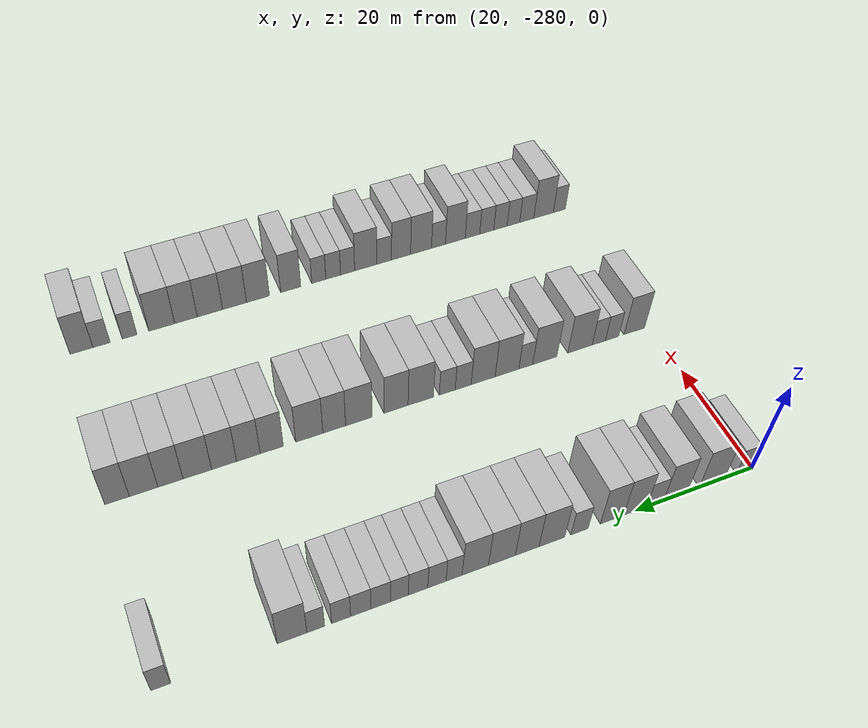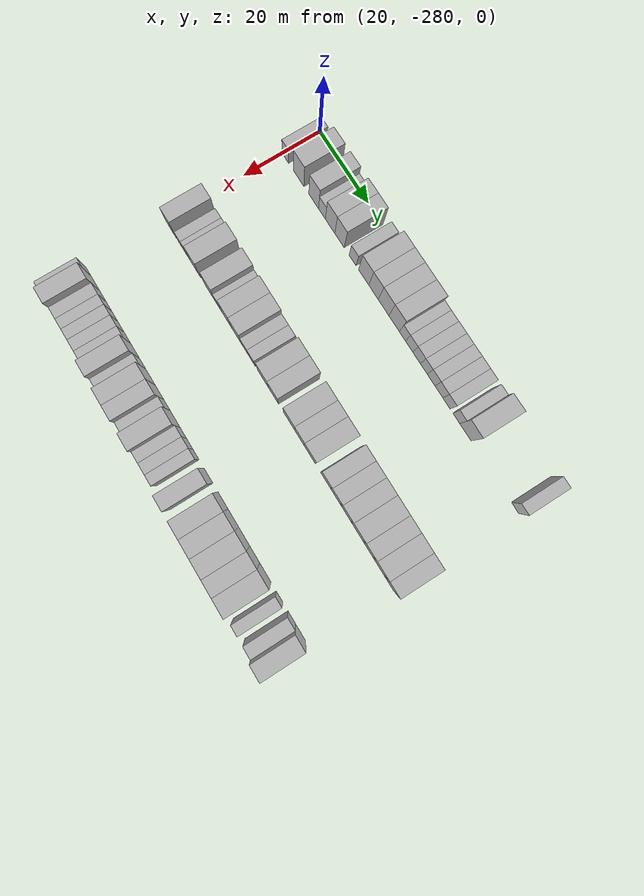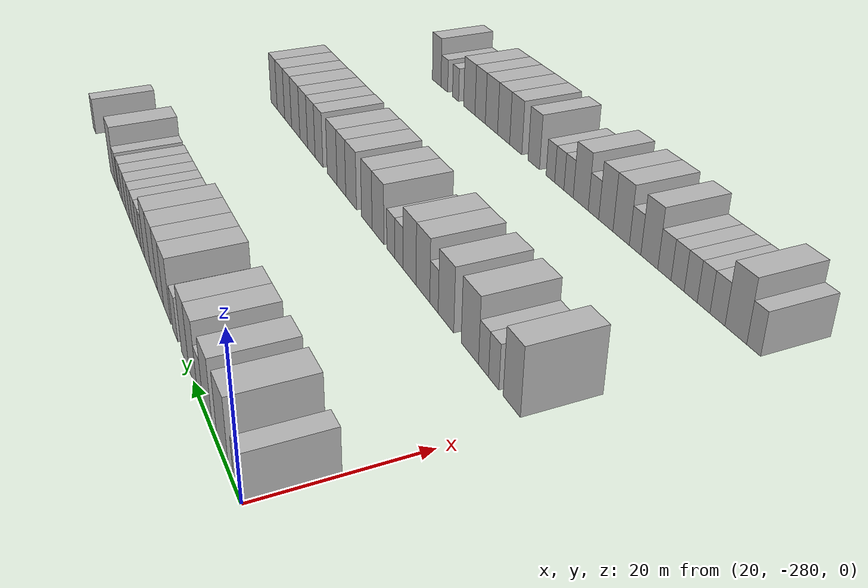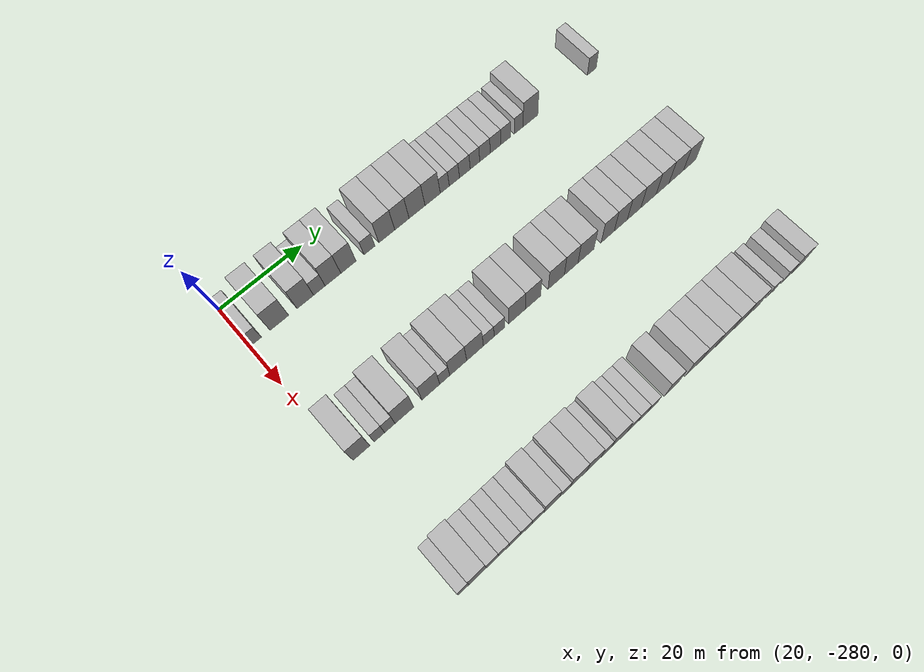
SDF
<sdf version="1.6">
 <world name="default">
  <model name="building_1">
   <static>1</static>
   <pose>25.0000 -278.6222 0 0.000000 0.000000 0.000000</pose>
   <link name="link">
    <pose>0 0 3.00 0 0 0</pose>
    <collision name="collision"><geometry><box><size>10.0000 2.7555 6.0000</size></box></geometry></collision>
    <visual name="visual">
     <cast_shadows>0</cast_shadows>
     <geometry><box><size>10.0000 2.7555 6.0000</size></box></geometry>
     <material>
      <script>
       <uri>model://HANNAS_wall/materials/scripts</uri>
       <uri>model://HANNAS_wall/materials/textures</uri>
       <name>vrc/HANNAS_wall</name>
      </script>
     </material>
    </visual>
   </link>
  </model>
  <model name="building_2">
   <static>1</static>
   <pose>25.0000 -273.0113 0 0.000000 0.000000 0.000000</pose>
   <link name="link">
    <pose>0 0 4.50 0 0 0</pose>
    <collision name="collision"><geometry><box><size>10.0000 4.4663 9.0000</size></box></geometry></collision>
    <visual name="visual">
     <cast_shadows>0</cast_shadows>
     <geometry><box><size>10.0000 4.4663 9.0000</size></box></geometry>
     <material>
      <script>
       <uri>model://HANNAS_wall/materials/scripts</uri>
       <uri>model://HANNAS_wall/materials/textures</uri>
       <name>vrc/HANNAS_wall</name>
      </script>
     </material>
    </visual>
   </link>
  </model>
  <model name="building_3">
   <static>1</static>
   <pose>25.0000 -266.7550 0 0.000000 0.000000 0.000000</pose>
   <link name="link">
    <pose>0 0 4.50 0 0 0</pose>
    <collision name="collision"><geometry><box><size>10.0000 4.0464 9.0000</size></box></geometry></collision>
    <visual name="visual">
     <cast_shadows>0</cast_shadows>
     <geometry><box><size>10.0000 4.0464 9.0000</size></box></geometry>
     <material>
      <script>
       <uri>model://HANNAS_wall/materials/scripts</uri>
       <uri>model://HANNAS_wall/materials/textures</uri>
       <name>vrc/HANNAS_wall</name>
      </script>
     </material>
    </visual>
   </link>
  </model>
  <model name="building_4">
   <static>1</static>
   <pose>25.0000 -263.3125 0 0.000000 0.000000 0.000000</pose>
   <link name="link">
    <pose>0 0 3.00 0 0 0</pose>
    <collision name="collision"><geometry><box><size>10.0000 2.8386 6.0000</size></box></geometry></collision>
    <visual name="visual">
     <cast_shadows>0</cast_shadows>
     <geometry><box><size>10.0000 2.8386 6.0000</size></box></geometry>
     <material>
      <script>
       <uri>model://HANNAS_wall/materials/scripts</uri>
       <uri>model://HANNAS_wall/materials/textures</uri>
       <name>vrc/HANNAS_wall</name>
      </script>
     </material>
    </visual>
   </link>
  </model>
  <model name="building_5">
   <static>1</static>
   <pose>25.0000 -259.9470 0 0.000000 0.000000 0.000000</pose>
   <link name="link">
    <pose>0 0 4.50 0 0 0</pose>
    <collision name="collision"><geometry><box><size>10.0000 3.8923 9.0000</size></box></geometry></collision>
    <visual name="visual">
     <cast_shadows>0</cast_shadows>
     <geometry><box><size>10.0000 3.8923 9.0000</size></box></geometry>
     <material>
      <script>
       <uri>model://HANNAS_wall/materials/scripts</uri>
       <uri>model://HANNAS_wall/materials/textures</uri>
       <name>vrc/HANNAS_wall</name>
      </script>
     </material>
    </visual>
   </link>
  </model>
  <model name="building_6">
   <static>1</static>
   <pose>25.0000 -256.0884 0 0.000000 0.000000 0.000000</pose>
   <link name="link">
    <pose>0 0 4.50 0 0 0</pose>
    <collision name="collision"><geometry><box><size>10.0000 3.8249 9.0000</size></box></geometry></collision>
    <visual name="visual">
     <cast_shadows>0</cast_shadows>
     <geometry><box><size>10.0000 3.8249 9.0000</size></box></geometry>
     <material>
      <script>
       <uri>model://HANNAS_wall/materials/scripts</uri>
       <uri>model://HANNAS_wall/materials/textures</uri>
       <name>vrc/HANNAS_wall</name>
      </script>
     </material>
    </visual>
   </link>
  </model>
  <model name="building_7">
   <static>1</static>
   <pose>25.0000 -250.7768 0 0.000000 0.000000 0.000000</pose>
   <link name="link">
    <pose>0 0 3.00 0 0 0</pose>
    <collision name="collision"><geometry><box><size>10.0000 2.7984 6.0000</size></box></geometry></collision>
    <visual name="visual">
     <cast_shadows>0</cast_shadows>
     <geometry><box><size>10.0000 2.7984 6.0000</size></box></geometry>
     <material>
      <script>
       <uri>model://HANNAS_wall/materials/scripts</uri>
       <uri>model://HANNAS_wall/materials/textures</uri>
       <name>vrc/HANNAS_wall</name>
      </script>
     </material>
    </visual>
   </link>
  </model>
  <model name="building_8">
   <static>1</static>
   <pose>25.0000 -246.3185 0 0.000000 0.000000 0.000000</pose>
   <link name="link">
    <pose>0 0 4.50 0 0 0</pose>
    <collision name="collision"><geometry><box><size>10.0000 4.1181 9.0000</size></box></geometry></collision>
    <visual name="visual">
     <cast_shadows>0</cast_shadows>
     <geometry><box><size>10.0000 4.1181 9.0000</size></box></geometry>
     <material>
      <script>
       <uri>model://HANNAS_wall/materials/scripts</uri>
       <uri>model://HANNAS_wall/materials/textures</uri>
       <name>vrc/HANNAS_wall</name>
      </script>
     </material>
    </visual>
   </link>
  </model>
  <model name="building_9">
   <static>1</static>
   <pose>25.0000 -242.3874 0 0.000000 0.000000 0.000000</pose>
   <link name="link">
    <pose>0 0 4.50 0 0 0</pose>
    <collision name="collision"><geometry><box><size>10.0000 3.7442 9.0000</size></box></geometry></collision>
    <visual name="visual">
     <cast_shadows>0</cast_shadows>
     <geometry><box><size>10.0000 3.7442 9.0000</size></box></geometry>
     <material>
      <script>
       <uri>model://HANNAS_wall/materials/scripts</uri>
       <uri>model://HANNAS_wall/materials/textures</uri>
       <name>vrc/HANNAS_wall</name>
      </script>
     </material>
    </visual>
   </link>
  </model>
  <model name="building_10">
   <static>1</static>
   <pose>25.0000 -238.4090 0 0.000000 0.000000 0.000000</pose>
   <link name="link">
    <pose>0 0 4.50 0 0 0</pose>
    <collision name="collision"><geometry><box><size>10.0000 4.2125 9.0000</size></box></geometry></collision>
    <visual name="visual">
     <cast_shadows>0</cast_shadows>
     <geometry><box><size>10.0000 4.2125 9.0000</size></box></geometry>
     <material>
      <script>
       <uri>model://HANNAS_wall/materials/scripts</uri>
       <uri>model://HANNAS_wall/materials/textures</uri>
       <name>vrc/HANNAS_wall</name>
      </script>
     </material>
    </visual>
   </link>
  </model>
  <model name="building_11">
   <static>1</static>
   <pose>25.0000 -234.2568 0 0.000000 0.000000 0.000000</pose>
   <link name="link">
    <pose>0 0 4.50 0 0 0</pose>
    <collision name="collision"><geometry><box><size>10.0000 4.0920 9.0000</size></box></geometry></collision>
    <visual name="visual">
     <cast_shadows>0</cast_shadows>
     <geometry><box><size>10.0000 4.0920 9.0000</size></box></geometry>
     <material>
      <script>
       <uri>model://HANNAS_wall/materials/scripts</uri>
       <uri>model://HANNAS_wall/materials/textures</uri>
       <name>vrc/HANNAS_wall</name>
      </script>
     </material>
    </visual>
   </link>
  </model>
  <model name="building_12">
   <static>1</static>
   <pose>25.0000 -230.9868 0 0.000000 0.000000 0.000000</pose>
   <link name="link">
    <pose>0 0 3.00 0 0 0</pose>
    <collision name="collision"><geometry><box><size>10.0000 2.4479 6.0000</size></box></geometry></collision>
    <visual name="visual">
     <cast_shadows>0</cast_shadows>
     <geometry><box><size>10.0000 2.4479 6.0000</size></box></geometry>
     <material>
      <script>
       <uri>model://HANNAS_wall/materials/scripts</uri>
       <uri>model://HANNAS_wall/materials/textures</uri>
       <name>vrc/HANNAS_wall</name>
      </script>
     </material>
    </visual>
   </link>
  </model>
  <model name="building_13">
   <static>1</static>
   <pose>25.0000 -228.3718 0 0.000000 0.000000 0.000000</pose>
   <link name="link">
    <pose>0 0 3.00 0 0 0</pose>
    <collision name="collision"><geometry><box><size>10.0000 2.7821 6.0000</size></box></geometry></collision>
    <visual name="visual">
     <cast_shadows>0</cast_shadows>
     <geometry><box><size>10.0000 2.7821 6.0000</size></box></geometry>
     <material>
      <script>
       <uri>model://HANNAS_wall/materials/scripts</uri>
       <uri>model://HANNAS_wall/materials/textures</uri>
       <name>vrc/HANNAS_wall</name>
      </script>
     </material>
    </visual>
   </link>
  </model>
  <model name="building_14">
   <static>1</static>
   <pose>25.0000 -225.5169 0 0.000000 0.000000 0.000000</pose>
   <link name="link">
    <pose>0 0 3.00 0 0 0</pose>
    <collision name="collision"><geometry><box><size>10.0000 2.9276 6.0000</size></box></geometry></collision>
    <visual name="visual">
     <cast_shadows>0</cast_shadows>
     <geometry><box><size>10.0000 2.9276 6.0000</size></box></geometry>
     <material>
      <script>
       <uri>model://HANNAS_wall/materials/scripts</uri>
       <uri>model://HANNAS_wall/materials/textures</uri>
       <name>vrc/HANNAS_wall</name>
      </script>
     </material>
    </visual>
   </link>
  </model>
  <model name="building_15">
   <static>1</static>
   <pose>25.0000 -222.7389 0 0.000000 0.000000 0.000000</pose>
   <link name="link">
    <pose>0 0 3.00 0 0 0</pose>
    <collision name="collision"><geometry><box><size>10.0000 2.6284 6.0000</size></box></geometry></collision>
    <visual name="visual">
     <cast_shadows>0</cast_shadows>
     <geometry><box><size>10.0000 2.6284 6.0000</size></box></geometry>
     <material>
      <script>
       <uri>model://HANNAS_wall/materials/scripts</uri>
       <uri>model://HANNAS_wall/materials/textures</uri>
       <name>vrc/HANNAS_wall</name>
      </script>
     </material>
    </visual>
   </link>
  </model>
  <model name="building_16">
   <static>1</static>
   <pose>25.0000 -219.9578 0 0.000000 0.000000 0.000000</pose>
   <link name="link">
    <pose>0 0 3.00 0 0 0</pose>
    <collision name="collision"><geometry><box><size>10.0000 2.9339 6.0000</size></box></geometry></collision>
    <visual name="visual">
     <cast_shadows>0</cast_shadows>
     <geometry><box><size>10.0000 2.9339 6.0000</size></box></geometry>
     <material>
      <script>
       <uri>model://HANNAS_wall/materials/scripts</uri>
       <uri>model://HANNAS_wall/materials/textures</uri>
       <name>vrc/HANNAS_wall</name>
      </script>
     </material>
    </visual>
   </link>
  </model>
  <model name="building_17">
   <static>1</static>
   <pose>25.0000 -217.0047 0 0.000000 0.000000 0.000000</pose>
   <link name="link">
    <pose>0 0 3.00 0 0 0</pose>
    <collision name="collision"><geometry><box><size>10.0000 2.9721 6.0000</size></box></geometry></collision>
    <visual name="visual">
     <cast_shadows>0</cast_shadows>
     <geometry><box><size>10.0000 2.9721 6.0000</size></box></geometry>
     <material>
      <script>
       <uri>model://HANNAS_wall/materials/scripts</uri>
       <uri>model://HANNAS_wall/materials/textures</uri>
       <name>vrc/HANNAS_wall</name>
      </script>
     </material>
    </visual>
   </link>
  </model>
  <model name="building_18">
   <static>1</static>
   <pose>25.0000 -214.1346 0 0.000000 0.000000 0.000000</pose>
   <link name="link">
    <pose>0 0 3.00 0 0 0</pose>
    <collision name="collision"><geometry><box><size>10.0000 2.7681 6.0000</size></box></geometry></collision>
    <visual name="visual">
     <cast_shadows>0</cast_shadows>
     <geometry><box><size>10.0000 2.7681 6.0000</size></box></geometry>
     <material>
      <script>
       <uri>model://HANNAS_wall/materials/scripts</uri>
       <uri>model://HANNAS_wall/materials/textures</uri>
       <name>vrc/HANNAS_wall</name>
      </script>
     </material>
    </visual>
   </link>
  </model>
  <model name="building_19">
   <static>1</static>
   <pose>25.0000 -210.4780 0 0.000000 0.000000 0.000000</pose>
   <link name="link">
    <pose>0 0 3.00 0 0 0</pose>
    <collision name="collision"><geometry><box><size>10.0000 2.5453 6.0000</size></box></geometry></collision>
    <visual name="visual">
     <cast_shadows>0</cast_shadows>
     <geometry><box><size>10.0000 2.5453 6.0000</size></box></geometry>
     <material>
      <script>
       <uri>model://HANNAS_wall/materials/scripts</uri>
       <uri>model://HANNAS_wall/materials/textures</uri>
       <name>vrc/HANNAS_wall</name>
      </script>
     </material>
    </visual>
   </link>
  </model>
  <model name="building_20">
   <static>1</static>
   <pose>25.0000 -207.0860 0 0.000000 0.000000 0.000000</pose>
   <link name="link">
    <pose>0 0 4.50 0 0 0</pose>
    <collision name="collision"><geometry><box><size>10.0000 4.2386 9.0000</size></box></geometry></collision>
    <visual name="visual">
     <cast_shadows>0</cast_shadows>
     <geometry><box><size>10.0000 4.2386 9.0000</size></box></geometry>
     <material>
      <script>
       <uri>model://HANNAS_wall/materials/scripts</uri>
       <uri>model://HANNAS_wall/materials/textures</uri>
       <name>vrc/HANNAS_wall</name>
      </script>
     </material>
    </visual>
   </link>
  </model>
  <model name="building_21">
   <static>1</static>
   <pose>25.0000 -188.9353 0 0.000000 0.000000 0.000000</pose>
   <link name="link">
    <pose>0 0 3.00 0 0 0</pose>
    <collision name="collision"><geometry><box><size>10.0000 2.6876 6.0000</size></box></geometry></collision>
    <visual name="visual">
     <cast_shadows>0</cast_shadows>
     <geometry><box><size>10.0000 2.6876 6.0000</size></box></geometry>
     <material>
      <script>
       <uri>model://HANNAS_wall/materials/scripts</uri>
       <uri>model://HANNAS_wall/materials/textures</uri>
       <name>vrc/HANNAS_wall</name>
      </script>
     </material>
    </visual>
   </link>
  </model>
  <model name="building_131">
   <static>1</static>
   <pose>55.0000 -277.0593 0 0.000000 0.000000 0.000000</pose>
   <link name="link">
    <pose>0 0 4.50 0 0 0</pose>
    <collision name="collision"><geometry><box><size>10.0000 3.8814 9.0000</size></box></geometry></collision>
    <visual name="visual">
     <cast_shadows>0</cast_shadows>
     <geometry><box><size>10.0000 3.8814 9.0000</size></box></geometry>
     <material>
      <script>
       <uri>model://HANNAS_wall/materials/scripts</uri>
       <uri>model://HANNAS_wall/materials/textures</uri>
       <name>vrc/HANNAS_wall</name>
      </script>
     </material>
    </visual>
   </link>
  </model>
  <model name="building_132">
   <static>1</static>
   <pose>55.0000 -272.8778 0 0.000000 0.000000 0.000000</pose>
   <link name="link">
    <pose>0 0 3.00 0 0 0</pose>
    <collision name="collision"><geometry><box><size>10.0000 2.4817 6.0000</size></box></geometry></collision>
    <visual name="visual">
     <cast_shadows>0</cast_shadows>
     <geometry><box><size>10.0000 2.4817 6.0000</size></box></geometry>
     <material>
      <script>
       <uri>model://HANNAS_wall/materials/scripts</uri>
       <uri>model://HANNAS_wall/materials/textures</uri>
       <name>vrc/HANNAS_wall</name>
      </script>
     </material>
    </visual>
   </link>
  </model>
  <model name="building_133">
   <static>1</static>
   <pose>55.0000 -270.4107 0 0.000000 0.000000 0.000000</pose>
   <link name="link">
    <pose>0 0 3.00 0 0 0</pose>
    <collision name="collision"><geometry><box><size>10.0000 2.4525 6.0000</size></box></geometry></collision>
    <visual name="visual">
     <cast_shadows>0</cast_shadows>
     <geometry><box><size>10.0000 2.4525 6.0000</size></box></geometry>
     <material>
      <script>
       <uri>model://HANNAS_wall/materials/scripts</uri>
       <uri>model://HANNAS_wall/materials/textures</uri>
       <name>vrc/HANNAS_wall</name>
      </script>
     </material>
    </visual>
   </link>
  </model>
  <model name="building_134">
   <static>1</static>
   <pose>55.0000 -266.9408 0 0.000000 0.000000 0.000000</pose>
   <link name="link">
    <pose>0 0 4.50 0 0 0</pose>
    <collision name="collision"><geometry><box><size>10.0000 4.4874 9.0000</size></box></geometry></collision>
    <visual name="visual">
     <cast_shadows>0</cast_shadows>
     <geometry><box><size>10.0000 4.4874 9.0000</size></box></geometry>
     <material>
      <script>
       <uri>model://HANNAS_wall/materials/scripts</uri>
       <uri>model://HANNAS_wall/materials/textures</uri>
       <name>vrc/HANNAS_wall</name>
      </script>
     </material>
    </visual>
   </link>
  </model>
  <model name="building_135">
   <static>1</static>
   <pose>55.0000 -260.5124 0 0.000000 0.000000 0.000000</pose>
   <link name="link">
    <pose>0 0 4.50 0 0 0</pose>
    <collision name="collision"><geometry><box><size>10.0000 4.3693 9.0000</size></box></geometry></collision>
    <visual name="visual">
     <cast_shadows>0</cast_shadows>
     <geometry><box><size>10.0000 4.3693 9.0000</size></box></geometry>
     <material>
      <script>
       <uri>model://HANNAS_wall/materials/scripts</uri>
       <uri>model://HANNAS_wall/materials/textures</uri>
       <name>vrc/HANNAS_wall</name>
      </script>
     </material>
    </visual>
   </link>
  </model>
  <model name="building_136">
   <static>1</static>
   <pose>55.0000 -257.0874 0 0.000000 0.000000 0.000000</pose>
   <link name="link">
    <pose>0 0 3.00 0 0 0</pose>
    <collision name="collision"><geometry><box><size>10.0000 2.4808 6.0000</size></box></geometry></collision>
    <visual name="visual">
     <cast_shadows>0</cast_shadows>
     <geometry><box><size>10.0000 2.4808 6.0000</size></box></geometry>
     <material>
      <script>
       <uri>model://HANNAS_wall/materials/scripts</uri>
       <uri>model://HANNAS_wall/materials/textures</uri>
       <name>vrc/HANNAS_wall</name>
      </script>
     </material>
    </visual>
   </link>
  </model>
  <model name="building_137">
   <static>1</static>
   <pose>55.0000 -253.7344 0 0.000000 0.000000 0.000000</pose>
   <link name="link">
    <pose>0 0 4.50 0 0 0</pose>
    <collision name="collision"><geometry><box><size>10.0000 4.2252 9.0000</size></box></geometry></collision>
    <visual name="visual">
     <cast_shadows>0</cast_shadows>
     <geometry><box><size>10.0000 4.2252 9.0000</size></box></geometry>
     <material>
      <script>
       <uri>model://HANNAS_wall/materials/scripts</uri>
       <uri>model://HANNAS_wall/materials/textures</uri>
       <name>vrc/HANNAS_wall</name>
      </script>
     </material>
    </visual>
   </link>
  </model>
  <model name="building_138">
   <static>1</static>
   <pose>55.0000 -249.5112 0 0.000000 0.000000 0.000000</pose>
   <link name="link">
    <pose>0 0 4.50 0 0 0</pose>
    <collision name="collision"><geometry><box><size>10.0000 4.2212 9.0000</size></box></geometry></collision>
    <visual name="visual">
     <cast_shadows>0</cast_shadows>
     <geometry><box><size>10.0000 4.2212 9.0000</size></box></geometry>
     <material>
      <script>
       <uri>model://HANNAS_wall/materials/scripts</uri>
       <uri>model://HANNAS_wall/materials/textures</uri>
       <name>vrc/HANNAS_wall</name>
      </script>
     </material>
    </visual>
   </link>
  </model>
  <model name="building_139">
   <static>1</static>
   <pose>55.0000 -246.0153 0 0.000000 0.000000 0.000000</pose>
   <link name="link">
    <pose>0 0 3.00 0 0 0</pose>
    <collision name="collision"><geometry><box><size>10.0000 2.7705 6.0000</size></box></geometry></collision>
    <visual name="visual">
     <cast_shadows>0</cast_shadows>
     <geometry><box><size>10.0000 2.7705 6.0000</size></box></geometry>
     <material>
      <script>
       <uri>model://HANNAS_wall/materials/scripts</uri>
       <uri>model://HANNAS_wall/materials/textures</uri>
       <name>vrc/HANNAS_wall</name>
      </script>
     </material>
    </visual>
   </link>
  </model>
  <model name="building_140">
   <static>1</static>
   <pose>55.0000 -243.2509 0 0.000000 0.000000 0.000000</pose>
   <link name="link">
    <pose>0 0 3.00 0 0 0</pose>
    <collision name="collision"><geometry><box><size>10.0000 2.7584 6.0000</size></box></geometry></collision>
    <visual name="visual">
     <cast_shadows>0</cast_shadows>
     <geometry><box><size>10.0000 2.7584 6.0000</size></box></geometry>
     <material>
      <script>
       <uri>model://HANNAS_wall/materials/scripts</uri>
       <uri>model://HANNAS_wall/materials/textures</uri>
       <name>vrc/HANNAS_wall</name>
      </script>
     </material>
    </visual>
   </link>
  </model>
  <model name="building_141">
   <static>1</static>
   <pose>55.0000 -238.7037 0 0.000000 0.000000 0.000000</pose>
   <link name="link">
    <pose>0 0 4.50 0 0 0</pose>
    <collision name="collision"><geometry><box><size>10.0000 4.3360 9.0000</size></box></geometry></collision>
    <visual name="visual">
     <cast_shadows>0</cast_shadows>
     <geometry><box><size>10.0000 4.3360 9.0000</size></box></geometry>
     <material>
      <script>
       <uri>model://HANNAS_wall/materials/scripts</uri>
       <uri>model://HANNAS_wall/materials/textures</uri>
       <name>vrc/HANNAS_wall</name>
      </script>
     </material>
    </visual>
   </link>
  </model>
  <model name="building_142">
   <static>1</static>
   <pose>55.0000 -234.5075 0 0.000000 0.000000 0.000000</pose>
   <link name="link">
    <pose>0 0 4.50 0 0 0</pose>
    <collision name="collision"><geometry><box><size>10.0000 4.0564 9.0000</size></box></geometry></collision>
    <visual name="visual">
     <cast_shadows>0</cast_shadows>
     <geometry><box><size>10.0000 4.0564 9.0000</size></box></geometry>
     <material>
      <script>
       <uri>model://HANNAS_wall/materials/scripts</uri>
       <uri>model://HANNAS_wall/materials/textures</uri>
       <name>vrc/HANNAS_wall</name>
      </script>
     </material>
    </visual>
   </link>
  </model>
  <model name="building_143">
   <static>1</static>
   <pose>55.0000 -228.2873 0 0.000000 0.000000 0.000000</pose>
   <link name="link">
    <pose>0 0 4.50 0 0 0</pose>
    <collision name="collision"><geometry><box><size>10.0000 4.3841 9.0000</size></box></geometry></collision>
    <visual name="visual">
     <cast_shadows>0</cast_shadows>
     <geometry><box><size>10.0000 4.3841 9.0000</size></box></geometry>
     <material>
      <script>
       <uri>model://HANNAS_wall/materials/scripts</uri>
       <uri>model://HANNAS_wall/materials/textures</uri>
       <name>vrc/HANNAS_wall</name>
      </script>
     </material>
    </visual>
   </link>
  </model>
  <model name="building_144">
   <static>1</static>
   <pose>55.0000 -224.2315 0 0.000000 0.000000 0.000000</pose>
   <link name="link">
    <pose>0 0 4.50 0 0 0</pose>
    <collision name="collision"><geometry><box><size>10.0000 3.7276 9.0000</size></box></geometry></collision>
    <visual name="visual">
     <cast_shadows>0</cast_shadows>
     <geometry><box><size>10.0000 3.7276 9.0000</size></box></geometry>
     <material>
      <script>
       <uri>model://HANNAS_wall/materials/scripts</uri>
       <uri>model://HANNAS_wall/materials/textures</uri>
       <name>vrc/HANNAS_wall</name>
      </script>
     </material>
    </visual>
   </link>
  </model>
  <model name="building_145">
   <static>1</static>
   <pose>55.0000 -220.1641 0 0.000000 0.000000 0.000000</pose>
   <link name="link">
    <pose>0 0 4.50 0 0 0</pose>
    <collision name="collision"><geometry><box><size>10.0000 4.4072 9.0000</size></box></geometry></collision>
    <visual name="visual">
     <cast_shadows>0</cast_shadows>
     <geometry><box><size>10.0000 4.4072 9.0000</size></box></geometry>
     <material>
      <script>
       <uri>model://HANNAS_wall/materials/scripts</uri>
       <uri>model://HANNAS_wall/materials/textures</uri>
       <name>vrc/HANNAS_wall</name>
      </script>
     </material>
    </visual>
   </link>
  </model>
  <model name="building_146">
   <static>1</static>
   <pose>55.0000 -214.1137 0 0.000000 0.000000 0.000000</pose>
   <link name="link">
    <pose>0 0 4.50 0 0 0</pose>
    <collision name="collision"><geometry><box><size>10.0000 3.6936 9.0000</size></box></geometry></collision>
    <visual name="visual">
     <cast_shadows>0</cast_shadows>
     <geometry><box><size>10.0000 3.6936 9.0000</size></box></geometry>
     <material>
      <script>
       <uri>model://HANNAS_wall/materials/scripts</uri>
       <uri>model://HANNAS_wall/materials/textures</uri>
       <name>vrc/HANNAS_wall</name>
      </script>
     </material>
    </visual>
   </link>
  </model>
  <model name="building_147">
   <static>1</static>
   <pose>55.0000 -210.4062 0 0.000000 0.000000 0.000000</pose>
   <link name="link">
    <pose>0 0 4.50 0 0 0</pose>
    <collision name="collision"><geometry><box><size>10.0000 3.7213 9.0000</size></box></geometry></collision>
    <visual name="visual">
     <cast_shadows>0</cast_shadows>
     <geometry><box><size>10.0000 3.7213 9.0000</size></box></geometry>
     <material>
      <script>
       <uri>model://HANNAS_wall/materials/scripts</uri>
       <uri>model://HANNAS_wall/materials/textures</uri>
       <name>vrc/HANNAS_wall</name>
      </script>
     </material>
    </visual>
   </link>
  </model>
  <model name="building_148">
   <static>1</static>
   <pose>55.0000 -206.5875 0 0.000000 0.000000 0.000000</pose>
   <link name="link">
    <pose>0 0 4.50 0 0 0</pose>
    <collision name="collision"><geometry><box><size>10.0000 3.9160 9.0000</size></box></geometry></collision>
    <visual name="visual">
     <cast_shadows>0</cast_shadows>
     <geometry><box><size>10.0000 3.9160 9.0000</size></box></geometry>
     <material>
      <script>
       <uri>model://HANNAS_wall/materials/scripts</uri>
       <uri>model://HANNAS_wall/materials/textures</uri>
       <name>vrc/HANNAS_wall</name>
      </script>
     </material>
    </visual>
   </link>
  </model>
  <model name="building_149">
   <static>1</static>
   <pose>55.0000 -202.4188 0 0.000000 0.000000 0.000000</pose>
   <link name="link">
    <pose>0 0 4.50 0 0 0</pose>
    <collision name="collision"><geometry><box><size>10.0000 4.4214 9.0000</size></box></geometry></collision>
    <visual name="visual">
     <cast_shadows>0</cast_shadows>
     <geometry><box><size>10.0000 4.4214 9.0000</size></box></geometry>
     <material>
      <script>
       <uri>model://HANNAS_wall/materials/scripts</uri>
       <uri>model://HANNAS_wall/materials/textures</uri>
       <name>vrc/HANNAS_wall</name>
      </script>
     </material>
    </visual>
   </link>
  </model>
  <model name="building_150">
   <static>1</static>
   <pose>55.0000 -198.2910 0 0.000000 0.000000 0.000000</pose>
   <link name="link">
    <pose>0 0 4.50 0 0 0</pose>
    <collision name="collision"><geometry><box><size>10.0000 3.8342 9.0000</size></box></geometry></collision>
    <visual name="visual">
     <cast_shadows>0</cast_shadows>
     <geometry><box><size>10.0000 3.8342 9.0000</size></box></geometry>
     <material>
      <script>
       <uri>model://HANNAS_wall/materials/scripts</uri>
       <uri>model://HANNAS_wall/materials/textures</uri>
       <name>vrc/HANNAS_wall</name>
      </script>
     </material>
    </visual>
   </link>
  </model>
  <model name="building_151">
   <static>1</static>
   <pose>55.0000 -194.2224 0 0.000000 0.000000 0.000000</pose>
   <link name="link">
    <pose>0 0 4.50 0 0 0</pose>
    <collision name="collision"><geometry><box><size>10.0000 4.3030 9.0000</size></box></geometry></collision>
    <visual name="visual">
     <cast_shadows>0</cast_shadows>
     <geometry><box><size>10.0000 4.3030 9.0000</size></box></geometry>
     <material>
      <script>
       <uri>model://HANNAS_wall/materials/scripts</uri>
       <uri>model://HANNAS_wall/materials/textures</uri>
       <name>vrc/HANNAS_wall</name>
      </script>
     </material>
    </visual>
   </link>
  </model>
  <model name="building_152">
   <static>1</static>
   <pose>55.0000 -190.2292 0 0.000000 0.000000 0.000000</pose>
   <link name="link">
    <pose>0 0 4.50 0 0 0</pose>
    <collision name="collision"><geometry><box><size>10.0000 3.6834 9.0000</size></box></geometry></collision>
    <visual name="visual">
     <cast_shadows>0</cast_shadows>
     <geometry><box><size>10.0000 3.6834 9.0000</size></box></geometry>
     <material>
      <script>
       <uri>model://HANNAS_wall/materials/scripts</uri>
       <uri>model://HANNAS_wall/materials/textures</uri>
       <name>vrc/HANNAS_wall</name>
      </script>
     </material>
    </visual>
   </link>
  </model>
  <model name="building_267">
   <static>1</static>
   <pose>85.0000 -278.7830 0 0.000000 0.000000 0.000000</pose>
   <link name="link">
    <pose>0 0 3.00 0 0 0</pose>
    <collision name="collision"><geometry><box><size>10.0000 2.4341 6.0000</size></box></geometry></collision>
    <visual name="visual">
     <cast_shadows>0</cast_shadows>
     <geometry><box><size>10.0000 2.4341 6.0000</size></box></geometry>
     <material>
      <script>
       <uri>model://HANNAS_wall/materials/scripts</uri>
       <uri>model://HANNAS_wall/materials/textures</uri>
       <name>vrc/HANNAS_wall</name>
      </script>
     </material>
    </visual>
   </link>
  </model>
  <model name="building_268">
   <static>1</static>
   <pose>85.0000 -275.5925 0 0.000000 0.000000 0.000000</pose>
   <link name="link">
    <pose>0 0 4.50 0 0 0</pose>
    <collision name="collision"><geometry><box><size>10.0000 3.9470 9.0000</size></box></geometry></collision>
    <visual name="visual">
     <cast_shadows>0</cast_shadows>
     <geometry><box><size>10.0000 3.9470 9.0000</size></box></geometry>
     <material>
      <script>
       <uri>model://HANNAS_wall/materials/scripts</uri>
       <uri>model://HANNAS_wall/materials/textures</uri>
       <name>vrc/HANNAS_wall</name>
      </script>
     </material>
    </visual>
   </link>
  </model>
  <model name="building_269">
   <static>1</static>
   <pose>85.0000 -272.2017 0 0.000000 0.000000 0.000000</pose>
   <link name="link">
    <pose>0 0 3.00 0 0 0</pose>
    <collision name="collision"><geometry><box><size>10.0000 2.8346 6.0000</size></box></geometry></collision>
    <visual name="visual">
     <cast_shadows>0</cast_shadows>
     <geometry><box><size>10.0000 2.8346 6.0000</size></box></geometry>
     <material>
      <script>
       <uri>model://HANNAS_wall/materials/scripts</uri>
       <uri>model://HANNAS_wall/materials/textures</uri>
       <name>vrc/HANNAS_wall</name>
      </script>
     </material>
    </visual>
   </link>
  </model>
  <model name="building_270">
   <static>1</static>
   <pose>85.0000 -269.5299 0 0.000000 0.000000 0.000000</pose>
   <link name="link">
    <pose>0 0 3.00 0 0 0</pose>
    <collision name="collision"><geometry><box><size>10.0000 2.5091 6.0000</size></box></geometry></collision>
    <visual name="visual">
     <cast_shadows>0</cast_shadows>
     <geometry><box><size>10.0000 2.5091 6.0000</size></box></geometry>
     <material>
      <script>
       <uri>model://HANNAS_wall/materials/scripts</uri>
       <uri>model://HANNAS_wall/materials/textures</uri>
       <name>vrc/HANNAS_wall</name>
      </script>
     </material>
    </visual>
   </link>
  </model>
  <model name="building_271">
   <static>1</static>
   <pose>85.0000 -266.9593 0 0.000000 0.000000 0.000000</pose>
   <link name="link">
    <pose>0 0 3.00 0 0 0</pose>
    <collision name="collision"><geometry><box><size>10.0000 2.6321 6.0000</size></box></geometry></collision>
    <visual name="visual">
     <cast_shadows>0</cast_shadows>
     <geometry><box><size>10.0000 2.6321 6.0000</size></box></geometry>
     <material>
      <script>
       <uri>model://HANNAS_wall/materials/scripts</uri>
       <uri>model://HANNAS_wall/materials/textures</uri>
       <name>vrc/HANNAS_wall</name>
      </script>
     </material>
    </visual>
   </link>
  </model>
  <model name="building_272">
   <static>1</static>
   <pose>85.0000 -264.2663 0 0.000000 0.000000 0.000000</pose>
   <link name="link">
    <pose>0 0 3.00 0 0 0</pose>
    <collision name="collision"><geometry><box><size>10.0000 2.7538 6.0000</size></box></geometry></collision>
    <visual name="visual">
     <cast_shadows>0</cast_shadows>
     <geometry><box><size>10.0000 2.7538 6.0000</size></box></geometry>
     <material>
      <script>
       <uri>model://HANNAS_wall/materials/scripts</uri>
       <uri>model://HANNAS_wall/materials/textures</uri>
       <name>vrc/HANNAS_wall</name>
      </script>
     </material>
    </visual>
   </link>
  </model>
  <model name="building_273">
   <static>1</static>
   <pose>85.0000 -261.4585 0 0.000000 0.000000 0.000000</pose>
   <link name="link">
    <pose>0 0 3.00 0 0 0</pose>
    <collision name="collision"><geometry><box><size>10.0000 2.8619 6.0000</size></box></geometry></collision>
    <visual name="visual">
     <cast_shadows>0</cast_shadows>
     <geometry><box><size>10.0000 2.8619 6.0000</size></box></geometry>
     <material>
      <script>
       <uri>model://HANNAS_wall/materials/scripts</uri>
       <uri>model://HANNAS_wall/materials/textures</uri>
       <name>vrc/HANNAS_wall</name>
      </script>
     </material>
    </visual>
   </link>
  </model>
  <model name="building_274">
   <static>1</static>
   <pose>85.0000 -258.1212 0 0.000000 0.000000 0.000000</pose>
   <link name="link">
    <pose>0 0 4.50 0 0 0</pose>
    <collision name="collision"><geometry><box><size>10.0000 3.8126 9.0000</size></box></geometry></collision>
    <visual name="visual">
     <cast_shadows>0</cast_shadows>
     <geometry><box><size>10.0000 3.8126 9.0000</size></box></geometry>
     <material>
      <script>
       <uri>model://HANNAS_wall/materials/scripts</uri>
       <uri>model://HANNAS_wall/materials/textures</uri>
       <name>vrc/HANNAS_wall</name>
      </script>
     </material>
    </visual>
   </link>
  </model>
  <model name="building_275">
   <static>1</static>
   <pose>85.0000 -254.8735 0 0.000000 0.000000 0.000000</pose>
   <link name="link">
    <pose>0 0 3.00 0 0 0</pose>
    <collision name="collision"><geometry><box><size>10.0000 2.6828 6.0000</size></box></geometry></collision>
    <visual name="visual">
     <cast_shadows>0</cast_shadows>
     <geometry><box><size>10.0000 2.6828 6.0000</size></box></geometry>
     <material>
      <script>
       <uri>model://HANNAS_wall/materials/scripts</uri>
       <uri>model://HANNAS_wall/materials/textures</uri>
       <name>vrc/HANNAS_wall</name>
      </script>
     </material>
    </visual>
   </link>
  </model>
  <model name="building_276">
   <static>1</static>
   <pose>85.0000 -251.5352 0 0.000000 0.000000 0.000000</pose>
   <link name="link">
    <pose>0 0 4.50 0 0 0</pose>
    <collision name="collision"><geometry><box><size>10.0000 3.9937 9.0000</size></box></geometry></collision>
    <visual name="visual">
     <cast_shadows>0</cast_shadows>
     <geometry><box><size>10.0000 3.9937 9.0000</size></box></geometry>
     <material>
      <script>
       <uri>model://HANNAS_wall/materials/scripts</uri>
       <uri>model://HANNAS_wall/materials/textures</uri>
       <name>vrc/HANNAS_wall</name>
      </script>
     </material>
    </visual>
   </link>
  </model>
  <model name="building_277">
   <static>1</static>
   <pose>85.0000 -247.7347 0 0.000000 0.000000 0.000000</pose>
   <link name="link">
    <pose>0 0 4.50 0 0 0</pose>
    <collision name="collision"><geometry><box><size>10.0000 3.6074 9.0000</size></box></geometry></collision>
    <visual name="visual">
     <cast_shadows>0</cast_shadows>
     <geometry><box><size>10.0000 3.6074 9.0000</size></box></geometry>
     <material>
      <script>
       <uri>model://HANNAS_wall/materials/scripts</uri>
       <uri>model://HANNAS_wall/materials/textures</uri>
       <name>vrc/HANNAS_wall</name>
      </script>
     </material>
    </visual>
   </link>
  </model>
  <model name="building_278">
   <static>1</static>
   <pose>85.0000 -244.5473 0 0.000000 0.000000 0.000000</pose>
   <link name="link">
    <pose>0 0 3.00 0 0 0</pose>
    <collision name="collision"><geometry><box><size>10.0000 2.7673 6.0000</size></box></geometry></collision>
    <visual name="visual">
     <cast_shadows>0</cast_shadows>
     <geometry><box><size>10.0000 2.7673 6.0000</size></box></geometry>
     <material>
      <script>
       <uri>model://HANNAS_wall/materials/scripts</uri>
       <uri>model://HANNAS_wall/materials/textures</uri>
       <name>vrc/HANNAS_wall</name>
      </script>
     </material>
    </visual>
   </link>
  </model>
  <model name="building_279">
   <static>1</static>
   <pose>85.0000 -241.1187 0 0.000000 0.000000 0.000000</pose>
   <link name="link">
    <pose>0 0 4.50 0 0 0</pose>
    <collision name="collision"><geometry><box><size>10.0000 4.0900 9.0000</size></box></geometry></collision>
    <visual name="visual">
     <cast_shadows>0</cast_shadows>
     <geometry><box><size>10.0000 4.0900 9.0000</size></box></geometry>
     <material>
      <script>
       <uri>model://HANNAS_wall/materials/scripts</uri>
       <uri>model://HANNAS_wall/materials/textures</uri>
       <name>vrc/HANNAS_wall</name>
      </script>
     </material>
    </visual>
   </link>
  </model>
  <model name="building_280">
   <static>1</static>
   <pose>85.0000 -237.7657 0 0.000000 0.000000 0.000000</pose>
   <link name="link">
    <pose>0 0 3.00 0 0 0</pose>
    <collision name="collision"><geometry><box><size>10.0000 2.6160 6.0000</size></box></geometry></collision>
    <visual name="visual">
     <cast_shadows>0</cast_shadows>
     <geometry><box><size>10.0000 2.6160 6.0000</size></box></geometry>
     <material>
      <script>
       <uri>model://HANNAS_wall/materials/scripts</uri>
       <uri>model://HANNAS_wall/materials/textures</uri>
       <name>vrc/HANNAS_wall</name>
      </script>
     </material>
    </visual>
   </link>
  </model>
  <model name="building_281">
   <static>1</static>
   <pose>85.0000 -235.1119 0 0.000000 0.000000 0.000000</pose>
   <link name="link">
    <pose>0 0 3.00 0 0 0</pose>
    <collision name="collision"><geometry><box><size>10.0000 2.6916 6.0000</size></box></geometry></collision>
    <visual name="visual">
     <cast_shadows>0</cast_shadows>
     <geometry><box><size>10.0000 2.6916 6.0000</size></box></geometry>
     <material>
      <script>
       <uri>model://HANNAS_wall/materials/scripts</uri>
       <uri>model://HANNAS_wall/materials/textures</uri>
       <name>vrc/HANNAS_wall</name>
      </script>
     </material>
    </visual>
   </link>
  </model>
  <model name="building_282">
   <static>1</static>
   <pose>85.0000 -232.4921 0 0.000000 0.000000 0.000000</pose>
   <link name="link">
    <pose>0 0 3.00 0 0 0</pose>
    <collision name="collision"><geometry><box><size>10.0000 2.5480 6.0000</size></box></geometry></collision>
    <visual name="visual">
     <cast_shadows>0</cast_shadows>
     <geometry><box><size>10.0000 2.5480 6.0000</size></box></geometry>
     <material>
      <script>
       <uri>model://HANNAS_wall/materials/scripts</uri>
       <uri>model://HANNAS_wall/materials/textures</uri>
       <name>vrc/HANNAS_wall</name>
      </script>
     </material>
    </visual>
   </link>
  </model>
  <model name="building_283">
   <static>1</static>
   <pose>85.0000 -227.4101 0 0.000000 0.000000 0.000000</pose>
   <link name="link">
    <pose>0 0 4.50 0 0 0</pose>
    <collision name="collision"><geometry><box><size>10.0000 3.6160 9.0000</size></box></geometry></collision>
    <visual name="visual">
     <cast_shadows>0</cast_shadows>
     <geometry><box><size>10.0000 3.6160 9.0000</size></box></geometry>
     <material>
      <script>
       <uri>model://HANNAS_wall/materials/scripts</uri>
       <uri>model://HANNAS_wall/materials/textures</uri>
       <name>vrc/HANNAS_wall</name>
      </script>
     </material>
    </visual>
   </link>
  </model>
  <model name="building_284">
   <static>1</static>
   <pose>85.0000 -221.5710 0 0.000000 0.000000 0.000000</pose>
   <link name="link">
    <pose>0 0 4.50 0 0 0</pose>
    <collision name="collision"><geometry><box><size>10.0000 4.0623 9.0000</size></box></geometry></collision>
    <visual name="visual">
     <cast_shadows>0</cast_shadows>
     <geometry><box><size>10.0000 4.0623 9.0000</size></box></geometry>
     <material>
      <script>
       <uri>model://HANNAS_wall/materials/scripts</uri>
       <uri>model://HANNAS_wall/materials/textures</uri>
       <name>vrc/HANNAS_wall</name>
      </script>
     </material>
    </visual>
   </link>
  </model>
  <model name="building_285">
   <static>1</static>
   <pose>85.0000 -217.4356 0 0.000000 0.000000 0.000000</pose>
   <link name="link">
    <pose>0 0 4.50 0 0 0</pose>
    <collision name="collision"><geometry><box><size>10.0000 4.2084 9.0000</size></box></geometry></collision>
    <visual name="visual">
     <cast_shadows>0</cast_shadows>
     <geometry><box><size>10.0000 4.2084 9.0000</size></box></geometry>
     <material>
      <script>
       <uri>model://HANNAS_wall/materials/scripts</uri>
       <uri>model://HANNAS_wall/materials/textures</uri>
       <name>vrc/HANNAS_wall</name>
      </script>
     </material>
    </visual>
   </link>
  </model>
  <model name="building_286">
   <static>1</static>
   <pose>85.0000 -213.1331 0 0.000000 0.000000 0.000000</pose>
   <link name="link">
    <pose>0 0 4.50 0 0 0</pose>
    <collision name="collision"><geometry><box><size>10.0000 4.3966 9.0000</size></box></geometry></collision>
    <visual name="visual">
     <cast_shadows>0</cast_shadows>
     <geometry><box><size>10.0000 4.3966 9.0000</size></box></geometry>
     <material>
      <script>
       <uri>model://HANNAS_wall/materials/scripts</uri>
       <uri>model://HANNAS_wall/materials/textures</uri>
       <name>vrc/HANNAS_wall</name>
      </script>
     </material>
    </visual>
   </link>
  </model>
  <model name="building_287">
   <static>1</static>
   <pose>85.0000 -208.9905 0 0.000000 0.000000 0.000000</pose>
   <link name="link">
    <pose>0 0 4.50 0 0 0</pose>
    <collision name="collision"><geometry><box><size>10.0000 3.8886 9.0000</size></box></geometry></collision>
    <visual name="visual">
     <cast_shadows>0</cast_shadows>
     <geometry><box><size>10.0000 3.8886 9.0000</size></box></geometry>
     <material>
      <script>
       <uri>model://HANNAS_wall/materials/scripts</uri>
       <uri>model://HANNAS_wall/materials/textures</uri>
       <name>vrc/HANNAS_wall</name>
      </script>
     </material>
    </visual>
   </link>
  </model>
  <model name="building_288">
   <static>1</static>
   <pose>85.0000 -204.8549 0 0.000000 0.000000 0.000000</pose>
   <link name="link">
    <pose>0 0 4.50 0 0 0</pose>
    <collision name="collision"><geometry><box><size>10.0000 4.3826 9.0000</size></box></geometry></collision>
    <visual name="visual">
     <cast_shadows>0</cast_shadows>
     <geometry><box><size>10.0000 4.3826 9.0000</size></box></geometry>
     <material>
      <script>
       <uri>model://HANNAS_wall/materials/scripts</uri>
       <uri>model://HANNAS_wall/materials/textures</uri>
       <name>vrc/HANNAS_wall</name>
      </script>
     </material>
    </visual>
   </link>
  </model>
  <model name="building_289">
   <static>1</static>
   <pose>85.0000 -199.4185 0 0.000000 0.000000 0.000000</pose>
   <link name="link">
    <pose>0 0 3.00 0 0 0</pose>
    <collision name="collision"><geometry><box><size>10.0000 2.4901 6.0000</size></box></geometry></collision>
    <visual name="visual">
     <cast_shadows>0</cast_shadows>
     <geometry><box><size>10.0000 2.4901 6.0000</size></box></geometry>
     <material>
      <script>
       <uri>model://HANNAS_wall/materials/scripts</uri>
       <uri>model://HANNAS_wall/materials/textures</uri>
       <name>vrc/HANNAS_wall</name>
      </script>
     </material>
    </visual>
   </link>
  </model>
  <model name="building_290">
   <static>1</static>
   <pose>85.0000 -194.7463 0 0.000000 0.000000 0.000000</pose>
   <link name="link">
    <pose>0 0 3.00 0 0 0</pose>
    <collision name="collision"><geometry><box><size>10.0000 2.8544 6.0000</size></box></geometry></collision>
    <visual name="visual">
     <cast_shadows>0</cast_shadows>
     <geometry><box><size>10.0000 2.8544 6.0000</size></box></geometry>
     <material>
      <script>
       <uri>model://HANNAS_wall/materials/scripts</uri>
       <uri>model://HANNAS_wall/materials/textures</uri>
       <name>vrc/HANNAS_wall</name>
      </script>
     </material>
    </visual>
   </link>
  </model>
  <model name="building_291">
   <static>1</static>
   <pose>85.0000 -191.4391 0 0.000000 0.000000 0.000000</pose>
   <link name="link">
    <pose>0 0 4.50 0 0 0</pose>
    <collision name="collision"><geometry><box><size>10.0000 3.7599 9.0000</size></box></geometry></collision>
    <visual name="visual">
     <cast_shadows>0</cast_shadows>
     <geometry><box><size>10.0000 3.7599 9.0000</size></box></geometry>
     <material>
      <script>
       <uri>model://HANNAS_wall/materials/scripts</uri>
       <uri>model://HANNAS_wall/materials/textures</uri>
       <name>vrc/HANNAS_wall</name>
      </script>
     </material>
    </visual>
   </link>
  </model>
 </world>
</sdf>
